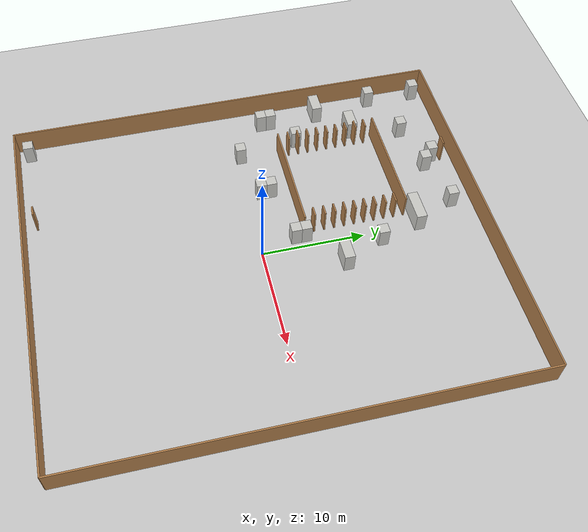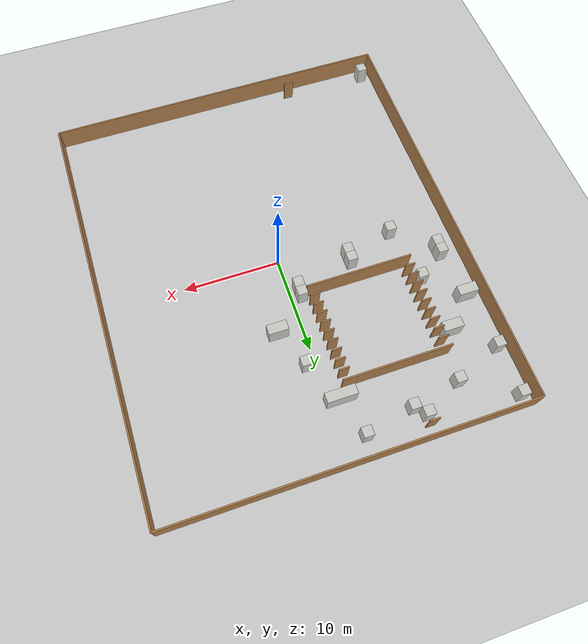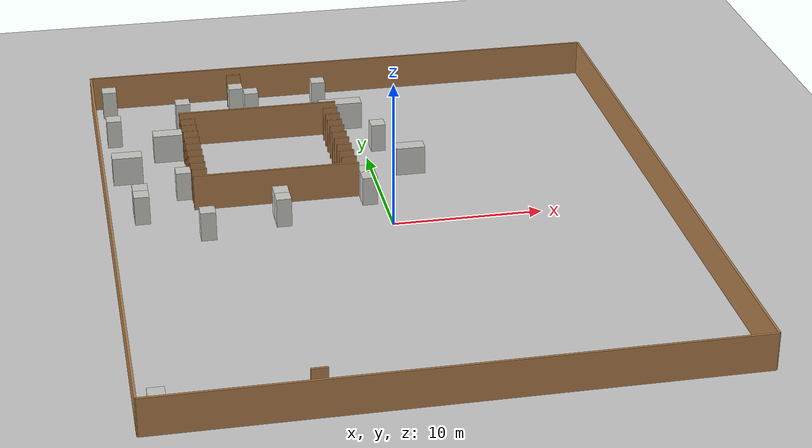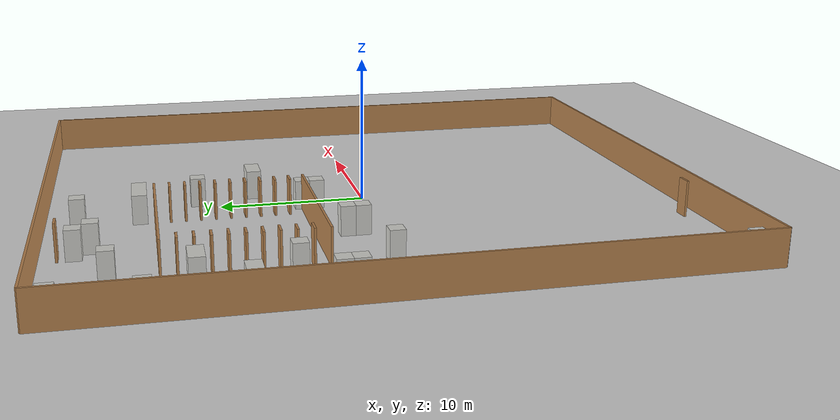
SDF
<sdf version="1.7">
 <world name="default">
  <light name="sun" type="directional">
   <pose>0 0 10 0 0 0</pose>
   <diffuse>0.8 0.8 0.8 1</diffuse>
   <specular>0.2 0.2 0.2 1</specular>
   <attenuation>
    <range>1000</range>
    <constant>0.9</constant>
    <linear>0.01</linear>
    <quadratic>0.001</quadratic>
   </attenuation>
   <direction>-0.5 0.1 -0.9</direction>
  </light>
  <model name="ground_plane">
   <static>1</static>
   <link name="link">
    <collision name="collision">
     <geometry><plane><normal>0 0 1</normal><size>120.0 60.0</size></plane></geometry>
     <surface>
      <contact><collide_bitmask>65535</collide_bitmask></contact>
      <friction><ode><mu>100</mu><mu2>50</mu2></ode></friction>
     </surface>
    </collision>
    <visual name="visual">
     <cast_shadows>0</cast_shadows>
     <geometry><plane><normal>0 0 1</normal><size>120.0 60.0</size></plane></geometry>
     <material>
      <script><uri>file://media/materials/scripts/gazebo.material</uri><name>Gazebo/Grey</name></script>
     </material>
    </visual>
   </link>
  </model>
  <model name="map_outer_wall_top">
   <static>true</static>
   <pose>0.000 21.700 1.250 0 0 0.0000</pose>
   <link name="link">
    <collision name="collision"><geometry><box><size>36.740 0.150 2.500</size></box></geometry></collision>
    <visual name="visual">
     <geometry><box><size>36.740 0.150 2.500</size></box></geometry>
     <material>
      <script><uri>file://media/materials/scripts/gazebo.material</uri><name>Gazebo/Wood</name></script>
      <ambient>1 1 1 1</ambient>
     </material>
    </visual>
   </link>
  </model>
  <model name="map_outer_wall_bottom">
   <static>true</static>
   <pose>0.000 -21.700 1.250 0 0 0.0000</pose>
   <link name="link">
    <collision name="collision"><geometry><box><size>36.740 0.150 2.500</size></box></geometry></collision>
    <visual name="visual">
     <geometry><box><size>36.740 0.150 2.500</size></box></geometry>
     <material>
      <script><uri>file://media/materials/scripts/gazebo.material</uri><name>Gazebo/Wood</name></script>
      <ambient>1 1 1 1</ambient>
     </material>
    </visual>
   </link>
  </model>
  <model name="map_outer_wall_left">
   <static>true</static>
   <pose>-18.370 0.000 1.250 0 0 1.5708</pose>
   <link name="link">
    <collision name="collision"><geometry><box><size>43.400 0.150 2.500</size></box></geometry></collision>
    <visual name="visual">
     <geometry><box><size>43.400 0.150 2.500</size></box></geometry>
     <material>
      <script><uri>file://media/materials/scripts/gazebo.material</uri><name>Gazebo/Wood</name></script>
      <ambient>1 1 1 1</ambient>
     </material>
    </visual>
   </link>
  </model>
  <model name="map_outer_wall_right">
   <static>true</static>
   <pose>18.370 0.000 1.250 0 0 1.5708</pose>
   <link name="link">
    <collision name="collision"><geometry><box><size>43.400 0.150 2.500</size></box></geometry></collision>
    <visual name="visual">
     <geometry><box><size>43.400 0.150 2.500</size></box></geometry>
     <material>
      <script><uri>file://media/materials/scripts/gazebo.material</uri><name>Gazebo/Wood</name></script>
      <ambient>1 1 1 1</ambient>
     </material>
    </visual>
   </link>
  </model>
  <model name="map_static_0">
   <static>true</static>
   <pose>-17.170 20.500 1.000 0 0 0.0000</pose>
   <link name="link">
    <collision name="collision"><geometry><box><size>1.010 1.000 2.000</size></box></geometry></collision>
    <visual name="visual">
     <geometry><box><size>1.010 1.000 2.000</size></box></geometry>
     <material>
      <script><uri>file://media/materials/scripts/gazebo.material</uri><name>Gazebo/CeilingTiled</name></script>
      <ambient>0.921569 0.807843 0.615686 1</ambient>
     </material>
    </visual>
   </link>
  </model>
  <model name="map_static_1">
   <static>true</static>
   <pose>-8.080 20.500 1.250 0 0 0.0000</pose>
   <link name="link">
    <collision name="collision"><geometry><box><size>1.010 0.150 2.500</size></box></geometry></collision>
    <visual name="visual">
     <geometry><box><size>1.010 0.150 2.500</size></box></geometry>
     <material>
      <script><uri>file://media/materials/scripts/gazebo.material</uri><name>Gazebo/Wood</name></script>
      <ambient>1 1 1 1</ambient>
     </material>
    </visual>
   </link>
  </model>
  <model name="map_static_2">
   <static>true</static>
   <pose>-8.080 19.500 1.000 0 0 0.0000</pose>
   <link name="link">
    <collision name="collision"><geometry><box><size>1.010 1.000 2.000</size></box></geometry></collision>
    <visual name="visual">
     <geometry><box><size>1.010 1.000 2.000</size></box></geometry>
     <material>
      <script><uri>file://media/materials/scripts/gazebo.material</uri><name>Gazebo/CeilingTiled</name></script>
      <ambient>0.921569 0.807843 0.615686 1</ambient>
     </material>
    </visual>
   </link>
  </model>
  <model name="map_static_3">
   <static>true</static>
   <pose>-2.020 19.500 1.000 0 0 0.0000</pose>
   <link name="link">
    <collision name="collision"><geometry><box><size>1.010 1.000 2.000</size></box></geometry></collision>
    <visual name="visual">
     <geometry><box><size>1.010 1.000 2.000</size></box></geometry>
     <material>
      <script><uri>file://media/materials/scripts/gazebo.material</uri><name>Gazebo/CeilingTiled</name></script>
      <ambient>0.921569 0.807843 0.615686 1</ambient>
     </material>
    </visual>
   </link>
  </model>
  <model name="map_static_4">
   <static>true</static>
   <pose>-7.070 18.500 1.000 0 0 0.0000</pose>
   <link name="link">
    <collision name="collision"><geometry><box><size>1.010 1.000 2.000</size></box></geometry></collision>
    <visual name="visual">
     <geometry><box><size>1.010 1.000 2.000</size></box></geometry>
     <material>
      <script><uri>file://media/materials/scripts/gazebo.material</uri><name>Gazebo/CeilingTiled</name></script>
      <ambient>0.921569 0.807843 0.615686 1</ambient>
     </material>
    </visual>
   </link>
  </model>
  <model name="map_static_5">
   <static>true</static>
   <pose>-12.120 17.500 1.000 0 0 0.0000</pose>
   <link name="link">
    <collision name="collision"><geometry><box><size>1.010 1.000 2.000</size></box></geometry></collision>
    <visual name="visual">
     <geometry><box><size>1.010 1.000 2.000</size></box></geometry>
     <material>
      <script><uri>file://media/materials/scripts/gazebo.material</uri><name>Gazebo/CeilingTiled</name></script>
      <ambient>0.921569 0.807843 0.615686 1</ambient>
     </material>
    </visual>
   </link>
  </model>
  <model name="map_static_6">
   <static>true</static>
   <pose>-17.170 15.500 1.000 0 0 0.0000</pose>
   <link name="link">
    <collision name="collision"><geometry><box><size>1.010 1.000 2.000</size></box></geometry></collision>
    <visual name="visual">
     <geometry><box><size>1.010 1.000 2.000</size></box></geometry>
     <material>
      <script><uri>file://media/materials/scripts/gazebo.material</uri><name>Gazebo/CeilingTiled</name></script>
      <ambient>0.921569 0.807843 0.615686 1</ambient>
     </material>
    </visual>
   </link>
  </model>
  <model name="map_static_7">
   <static>true</static>
   <pose>-1.010 15.500 1.000 0 0 0.0000</pose>
   <link name="link">
    <collision name="collision"><geometry><box><size>3.030 1.000 2.000</size></box></geometry></collision>
    <visual name="visual">
     <geometry><box><size>3.030 1.000 2.000</size></box></geometry>
     <material>
      <script><uri>file://media/materials/scripts/gazebo.material</uri><name>Gazebo/CeilingTiled</name></script>
      <ambient>0.921569 0.807843 0.615686 1</ambient>
     </material>
    </visual>
   </link>
  </model>
  <model name="map_static_8">
   <static>true</static>
   <pose>-7.070 14.500 1.250 0 0 0.0000</pose>
   <link name="link">
    <collision name="collision"><geometry><box><size>11.110 0.150 2.500</size></box></geometry></collision>
    <visual name="visual">
     <geometry><box><size>11.110 0.150 2.500</size></box></geometry>
     <material>
      <script><uri>file://media/materials/scripts/gazebo.material</uri><name>Gazebo/Wood</name></script>
      <ambient>1 1 1 1</ambient>
     </material>
    </visual>
   </link>
  </model>
  <model name="map_static_9">
   <static>true</static>
   <pose>-12.120 13.500 1.250 0 0 0.0000</pose>
   <link name="link">
    <collision name="collision"><geometry><box><size>1.010 0.150 2.500</size></box></geometry></collision>
    <visual name="visual">
     <geometry><box><size>1.010 0.150 2.500</size></box></geometry>
     <material>
      <script><uri>file://media/materials/scripts/gazebo.material</uri><name>Gazebo/Wood</name></script>
      <ambient>1 1 1 1</ambient>
     </material>
    </visual>
   </link>
  </model>
  <model name="map_static_10">
   <static>true</static>
   <pose>-2.020 13.500 1.250 0 0 0.0000</pose>
   <link name="link">
    <collision name="collision"><geometry><box><size>1.010 0.150 2.500</size></box></geometry></collision>
    <visual name="visual">
     <geometry><box><size>1.010 0.150 2.500</size></box></geometry>
     <material>
      <script><uri>file://media/materials/scripts/gazebo.material</uri><name>Gazebo/Wood</name></script>
      <ambient>1 1 1 1</ambient>
     </material>
    </visual>
   </link>
  </model>
  <model name="map_static_11">
   <static>true</static>
   <pose>-13.635 12.500 1.000 0 0 0.0000</pose>
   <link name="link">
    <collision name="collision"><geometry><box><size>2.020 1.000 2.000</size></box></geometry></collision>
    <visual name="visual">
     <geometry><box><size>2.020 1.000 2.000</size></box></geometry>
     <material>
      <script><uri>file://media/materials/scripts/gazebo.material</uri><name>Gazebo/CeilingTiled</name></script>
      <ambient>0.921569 0.807843 0.615686 1</ambient>
     </material>
    </visual>
   </link>
  </model>
  <model name="map_static_12">
   <static>true</static>
   <pose>-12.120 12.500 1.250 0 0 0.0000</pose>
   <link name="link">
    <collision name="collision"><geometry><box><size>1.010 0.150 2.500</size></box></geometry></collision>
    <visual name="visual">
     <geometry><box><size>1.010 0.150 2.500</size></box></geometry>
     <material>
      <script><uri>file://media/materials/scripts/gazebo.material</uri><name>Gazebo/Wood</name></script>
      <ambient>1 1 1 1</ambient>
     </material>
    </visual>
   </link>
  </model>
  <model name="map_static_13">
   <static>true</static>
   <pose>-2.020 12.500 1.250 0 0 0.0000</pose>
   <link name="link">
    <collision name="collision"><geometry><box><size>1.010 0.150 2.500</size></box></geometry></collision>
    <visual name="visual">
     <geometry><box><size>1.010 0.150 2.500</size></box></geometry>
     <material>
      <script><uri>file://media/materials/scripts/gazebo.material</uri><name>Gazebo/Wood</name></script>
      <ambient>1 1 1 1</ambient>
     </material>
    </visual>
   </link>
  </model>
  <model name="map_static_14">
   <static>true</static>
   <pose>-12.120 11.500 1.250 0 0 0.0000</pose>
   <link name="link">
    <collision name="collision"><geometry><box><size>1.010 0.150 2.500</size></box></geometry></collision>
    <visual name="visual">
     <geometry><box><size>1.010 0.150 2.500</size></box></geometry>
     <material>
      <script><uri>file://media/materials/scripts/gazebo.material</uri><name>Gazebo/Wood</name></script>
      <ambient>1 1 1 1</ambient>
     </material>
    </visual>
   </link>
  </model>
  <model name="map_static_15">
   <static>true</static>
   <pose>-2.020 11.500 1.250 0 0 0.0000</pose>
   <link name="link">
    <collision name="collision"><geometry><box><size>1.010 0.150 2.500</size></box></geometry></collision>
    <visual name="visual">
     <geometry><box><size>1.010 0.150 2.500</size></box></geometry>
     <material>
      <script><uri>file://media/materials/scripts/gazebo.material</uri><name>Gazebo/Wood</name></script>
      <ambient>1 1 1 1</ambient>
     </material>
    </visual>
   </link>
  </model>
  <model name="map_static_16">
   <static>true</static>
   <pose>1.010 11.500 1.000 0 0 0.0000</pose>
   <link name="link">
    <collision name="collision"><geometry><box><size>1.010 1.000 2.000</size></box></geometry></collision>
    <visual name="visual">
     <geometry><box><size>1.010 1.000 2.000</size></box></geometry>
     <material>
      <script><uri>file://media/materials/scripts/gazebo.material</uri><name>Gazebo/CeilingTiled</name></script>
      <ambient>0.921569 0.807843 0.615686 1</ambient>
     </material>
    </visual>
   </link>
  </model>
  <model name="map_static_17">
   <static>true</static>
   <pose>-12.120 10.500 1.250 0 0 0.0000</pose>
   <link name="link">
    <collision name="collision"><geometry><box><size>1.010 0.150 2.500</size></box></geometry></collision>
    <visual name="visual">
     <geometry><box><size>1.010 0.150 2.500</size></box></geometry>
     <material>
      <script><uri>file://media/materials/scripts/gazebo.material</uri><name>Gazebo/Wood</name></script>
      <ambient>1 1 1 1</ambient>
     </material>
    </visual>
   </link>
  </model>
  <model name="map_static_18">
   <static>true</static>
   <pose>-2.020 10.500 1.250 0 0 0.0000</pose>
   <link name="link">
    <collision name="collision"><geometry><box><size>1.010 0.150 2.500</size></box></geometry></collision>
    <visual name="visual">
     <geometry><box><size>1.010 0.150 2.500</size></box></geometry>
     <material>
      <script><uri>file://media/materials/scripts/gazebo.material</uri><name>Gazebo/Wood</name></script>
      <ambient>1 1 1 1</ambient>
     </material>
    </visual>
   </link>
  </model>
  <model name="map_static_19">
   <static>true</static>
   <pose>-16.665 9.500 1.000 0 0 0.0000</pose>
   <link name="link">
    <collision name="collision"><geometry><box><size>2.020 1.000 2.000</size></box></geometry></collision>
    <visual name="visual">
     <geometry><box><size>2.020 1.000 2.000</size></box></geometry>
     <material>
      <script><uri>file://media/materials/scripts/gazebo.material</uri><name>Gazebo/CeilingTiled</name></script>
      <ambient>0.921569 0.807843 0.615686 1</ambient>
     </material>
    </visual>
   </link>
  </model>
  <model name="map_static_20">
   <static>true</static>
   <pose>-12.120 9.500 1.250 0 0 0.0000</pose>
   <link name="link">
    <collision name="collision"><geometry><box><size>1.010 0.150 2.500</size></box></geometry></collision>
    <visual name="visual">
     <geometry><box><size>1.010 0.150 2.500</size></box></geometry>
     <material>
      <script><uri>file://media/materials/scripts/gazebo.material</uri><name>Gazebo/Wood</name></script>
      <ambient>1 1 1 1</ambient>
     </material>
    </visual>
   </link>
  </model>
  <model name="map_static_21">
   <static>true</static>
   <pose>-2.020 9.500 1.250 0 0 0.0000</pose>
   <link name="link">
    <collision name="collision"><geometry><box><size>1.010 0.150 2.500</size></box></geometry></collision>
    <visual name="visual">
     <geometry><box><size>1.010 0.150 2.500</size></box></geometry>
     <material>
      <script><uri>file://media/materials/scripts/gazebo.material</uri><name>Gazebo/Wood</name></script>
      <ambient>1 1 1 1</ambient>
     </material>
    </visual>
   </link>
  </model>
  <model name="map_static_22">
   <static>true</static>
   <pose>-12.120 8.500 1.250 0 0 0.0000</pose>
   <link name="link">
    <collision name="collision"><geometry><box><size>1.010 0.150 2.500</size></box></geometry></collision>
    <visual name="visual">
     <geometry><box><size>1.010 0.150 2.500</size></box></geometry>
     <material>
      <script><uri>file://media/materials/scripts/gazebo.material</uri><name>Gazebo/Wood</name></script>
      <ambient>1 1 1 1</ambient>
     </material>
    </visual>
   </link>
  </model>
  <model name="map_static_23">
   <static>true</static>
   <pose>-2.020 8.500 1.250 0 0 0.0000</pose>
   <link name="link">
    <collision name="collision"><geometry><box><size>1.010 0.150 2.500</size></box></geometry></collision>
    <visual name="visual">
     <geometry><box><size>1.010 0.150 2.500</size></box></geometry>
     <material>
      <script><uri>file://media/materials/scripts/gazebo.material</uri><name>Gazebo/Wood</name></script>
      <ambient>1 1 1 1</ambient>
     </material>
    </visual>
   </link>
  </model>
  <model name="map_static_24">
   <static>true</static>
   <pose>-12.120 7.500 1.250 0 0 0.0000</pose>
   <link name="link">
    <collision name="collision"><geometry><box><size>1.010 0.150 2.500</size></box></geometry></collision>
    <visual name="visual">
     <geometry><box><size>1.010 0.150 2.500</size></box></geometry>
     <material>
      <script><uri>file://media/materials/scripts/gazebo.material</uri><name>Gazebo/Wood</name></script>
      <ambient>1 1 1 1</ambient>
     </material>
    </visual>
   </link>
  </model>
  <model name="map_static_25">
   <static>true</static>
   <pose>-2.020 7.500 1.250 0 0 0.0000</pose>
   <link name="link">
    <collision name="collision"><geometry><box><size>1.010 0.150 2.500</size></box></geometry></collision>
    <visual name="visual">
     <geometry><box><size>1.010 0.150 2.500</size></box></geometry>
     <material>
      <script><uri>file://media/materials/scripts/gazebo.material</uri><name>Gazebo/Wood</name></script>
      <ambient>1 1 1 1</ambient>
     </material>
    </visual>
   </link>
  </model>
  <model name="map_static_26">
   <static>true</static>
   <pose>2.525 7.500 1.000 0 0 0.0000</pose>
   <link name="link">
    <collision name="collision"><geometry><box><size>2.020 1.000 2.000</size></box></geometry></collision>
    <visual name="visual">
     <geometry><box><size>2.020 1.000 2.000</size></box></geometry>
     <material>
      <script><uri>file://media/materials/scripts/gazebo.material</uri><name>Gazebo/CeilingTiled</name></script>
      <ambient>0.921569 0.807843 0.615686 1</ambient>
     </material>
    </visual>
   </link>
  </model>
  <model name="map_static_27">
   <static>true</static>
   <pose>-13.130 6.500 1.000 0 0 0.0000</pose>
   <link name="link">
    <collision name="collision"><geometry><box><size>1.010 1.000 2.000</size></box></geometry></collision>
    <visual name="visual">
     <geometry><box><size>1.010 1.000 2.000</size></box></geometry>
     <material>
      <script><uri>file://media/materials/scripts/gazebo.material</uri><name>Gazebo/CeilingTiled</name></script>
      <ambient>0.921569 0.807843 0.615686 1</ambient>
     </material>
    </visual>
   </link>
  </model>
  <model name="map_static_28">
   <static>true</static>
   <pose>-12.120 6.500 1.250 0 0 0.0000</pose>
   <link name="link">
    <collision name="collision"><geometry><box><size>1.010 0.150 2.500</size></box></geometry></collision>
    <visual name="visual">
     <geometry><box><size>1.010 0.150 2.500</size></box></geometry>
     <material>
      <script><uri>file://media/materials/scripts/gazebo.material</uri><name>Gazebo/Wood</name></script>
      <ambient>1 1 1 1</ambient>
     </material>
    </visual>
   </link>
  </model>
  <model name="map_static_29">
   <static>true</static>
   <pose>-2.020 6.500 1.250 0 0 0.0000</pose>
   <link name="link">
    <collision name="collision"><geometry><box><size>1.010 0.150 2.500</size></box></geometry></collision>
    <visual name="visual">
     <geometry><box><size>1.010 0.150 2.500</size></box></geometry>
     <material>
      <script><uri>file://media/materials/scripts/gazebo.material</uri><name>Gazebo/Wood</name></script>
      <ambient>1 1 1 1</ambient>
     </material>
    </visual>
   </link>
  </model>
  <model name="map_static_30">
   <static>true</static>
   <pose>-12.120 5.500 1.250 0 0 0.0000</pose>
   <link name="link">
    <collision name="collision"><geometry><box><size>1.010 0.150 2.500</size></box></geometry></collision>
    <visual name="visual">
     <geometry><box><size>1.010 0.150 2.500</size></box></geometry>
     <material>
      <script><uri>file://media/materials/scripts/gazebo.material</uri><name>Gazebo/Wood</name></script>
      <ambient>1 1 1 1</ambient>
     </material>
    </visual>
   </link>
  </model>
  <model name="map_static_31">
   <static>true</static>
   <pose>-2.020 5.500 1.250 0 0 0.0000</pose>
   <link name="link">
    <collision name="collision"><geometry><box><size>1.010 0.150 2.500</size></box></geometry></collision>
    <visual name="visual">
     <geometry><box><size>1.010 0.150 2.500</size></box></geometry>
     <material>
      <script><uri>file://media/materials/scripts/gazebo.material</uri><name>Gazebo/Wood</name></script>
      <ambient>1 1 1 1</ambient>
     </material>
    </visual>
   </link>
  </model>
  <model name="map_static_32">
   <static>true</static>
   <pose>-16.160 4.500 1.000 0 0 0.0000</pose>
   <link name="link">
    <collision name="collision"><geometry><box><size>1.010 1.000 2.000</size></box></geometry></collision>
    <visual name="visual">
     <geometry><box><size>1.010 1.000 2.000</size></box></geometry>
     <material>
      <script><uri>file://media/materials/scripts/gazebo.material</uri><name>Gazebo/CeilingTiled</name></script>
      <ambient>0.921569 0.807843 0.615686 1</ambient>
     </material>
    </visual>
   </link>
  </model>
  <model name="map_static_33">
   <static>true</static>
   <pose>-7.070 4.500 1.250 0 0 0.0000</pose>
   <link name="link">
    <collision name="collision"><geometry><box><size>11.110 0.150 2.500</size></box></geometry></collision>
    <visual name="visual">
     <geometry><box><size>11.110 0.150 2.500</size></box></geometry>
     <material>
      <script><uri>file://media/materials/scripts/gazebo.material</uri><name>Gazebo/Wood</name></script>
      <ambient>1 1 1 1</ambient>
     </material>
    </visual>
   </link>
  </model>
  <model name="map_static_34">
   <static>true</static>
   <pose>-1.010 4.500 1.000 0 0 0.0000</pose>
   <link name="link">
    <collision name="collision"><geometry><box><size>1.010 1.000 2.000</size></box></geometry></collision>
    <visual name="visual">
     <geometry><box><size>1.010 1.000 2.000</size></box></geometry>
     <material>
      <script><uri>file://media/materials/scripts/gazebo.material</uri><name>Gazebo/CeilingTiled</name></script>
      <ambient>0.921569 0.807843 0.615686 1</ambient>
     </material>
    </visual>
   </link>
  </model>
  <model name="map_static_35">
   <static>true</static>
   <pose>-16.160 3.500 1.000 0 0 0.0000</pose>
   <link name="link">
    <collision name="collision"><geometry><box><size>1.010 1.000 2.000</size></box></geometry></collision>
    <visual name="visual">
     <geometry><box><size>1.010 1.000 2.000</size></box></geometry>
     <material>
      <script><uri>file://media/materials/scripts/gazebo.material</uri><name>Gazebo/CeilingTiled</name></script>
      <ambient>0.921569 0.807843 0.615686 1</ambient>
     </material>
    </visual>
   </link>
  </model>
  <model name="map_static_36">
   <static>true</static>
   <pose>-1.010 3.500 1.000 0 0 0.0000</pose>
   <link name="link">
    <collision name="collision"><geometry><box><size>1.010 1.000 2.000</size></box></geometry></collision>
    <visual name="visual">
     <geometry><box><size>1.010 1.000 2.000</size></box></geometry>
     <material>
      <script><uri>file://media/materials/scripts/gazebo.material</uri><name>Gazebo/CeilingTiled</name></script>
      <ambient>0.921569 0.807843 0.615686 1</ambient>
     </material>
    </visual>
   </link>
  </model>
  <model name="map_static_37">
   <static>true</static>
   <pose>-7.070 2.500 1.000 0 0 0.0000</pose>
   <link name="link">
    <collision name="collision"><geometry><box><size>1.010 1.000 2.000</size></box></geometry></collision>
    <visual name="visual">
     <geometry><box><size>1.010 1.000 2.000</size></box></geometry>
     <material>
      <script><uri>file://media/materials/scripts/gazebo.material</uri><name>Gazebo/CeilingTiled</name></script>
      <ambient>0.921569 0.807843 0.615686 1</ambient>
     </material>
    </visual>
   </link>
  </model>
  <model name="map_static_38">
   <static>true</static>
   <pose>-7.070 1.500 1.000 0 0 0.0000</pose>
   <link name="link">
    <collision name="collision"><geometry><box><size>1.010 1.000 2.000</size></box></geometry></collision>
    <visual name="visual">
     <geometry><box><size>1.010 1.000 2.000</size></box></geometry>
     <material>
      <script><uri>file://media/materials/scripts/gazebo.material</uri><name>Gazebo/CeilingTiled</name></script>
      <ambient>0.921569 0.807843 0.615686 1</ambient>
     </material>
    </visual>
   </link>
  </model>
  <model name="map_static_39">
   <static>true</static>
   <pose>-12.120 0.500 1.000 0 0 0.0000</pose>
   <link name="link">
    <collision name="collision"><geometry><box><size>1.010 1.000 2.000</size></box></geometry></collision>
    <visual name="visual">
     <geometry><box><size>1.010 1.000 2.000</size></box></geometry>
     <material>
      <script><uri>file://media/materials/scripts/gazebo.material</uri><name>Gazebo/CeilingTiled</name></script>
      <ambient>0.921569 0.807843 0.615686 1</ambient>
     </material>
    </visual>
   </link>
  </model>
  <model name="map_static_40">
   <static>true</static>
   <pose>-17.170 -20.500 1.000 0 0 0.0000</pose>
   <link name="link">
    <collision name="collision"><geometry><box><size>1.010 1.000 2.000</size></box></geometry></collision>
    <visual name="visual">
     <geometry><box><size>1.010 1.000 2.000</size></box></geometry>
     <material>
      <script><uri>file://media/materials/scripts/gazebo.material</uri><name>Gazebo/CeilingTiled</name></script>
      <ambient>0.921569 0.807843 0.615686 1</ambient>
     </material>
    </visual>
   </link>
  </model>
  <model name="map_static_41">
   <static>true</static>
   <pose>-8.080 -20.500 1.250 0 0 0.0000</pose>
   <link name="link">
    <collision name="collision"><geometry><box><size>1.010 0.150 2.500</size></box></geometry></collision>
    <visual name="visual">
     <geometry><box><size>1.010 0.150 2.500</size></box></geometry>
     <material>
      <script><uri>file://media/materials/scripts/gazebo.material</uri><name>Gazebo/Wood</name></script>
      <ambient>1 1 1 1</ambient>
     </material>
    </visual>
   </link>
  </model>
  <gravity>0 0 -9.8</gravity>
  <physics type="ode">
   <max_step_size>0.002</max_step_size>
   <real_time_factor>1</real_time_factor>
   <real_time_update_rate>500</real_time_update_rate>
  </physics>
  <scene><ambient>0.4 0.4 0.4 1</ambient><background>0.7 0.7 0.7 1</background><shadows>1</shadows></scene>
 </world>
</sdf>
